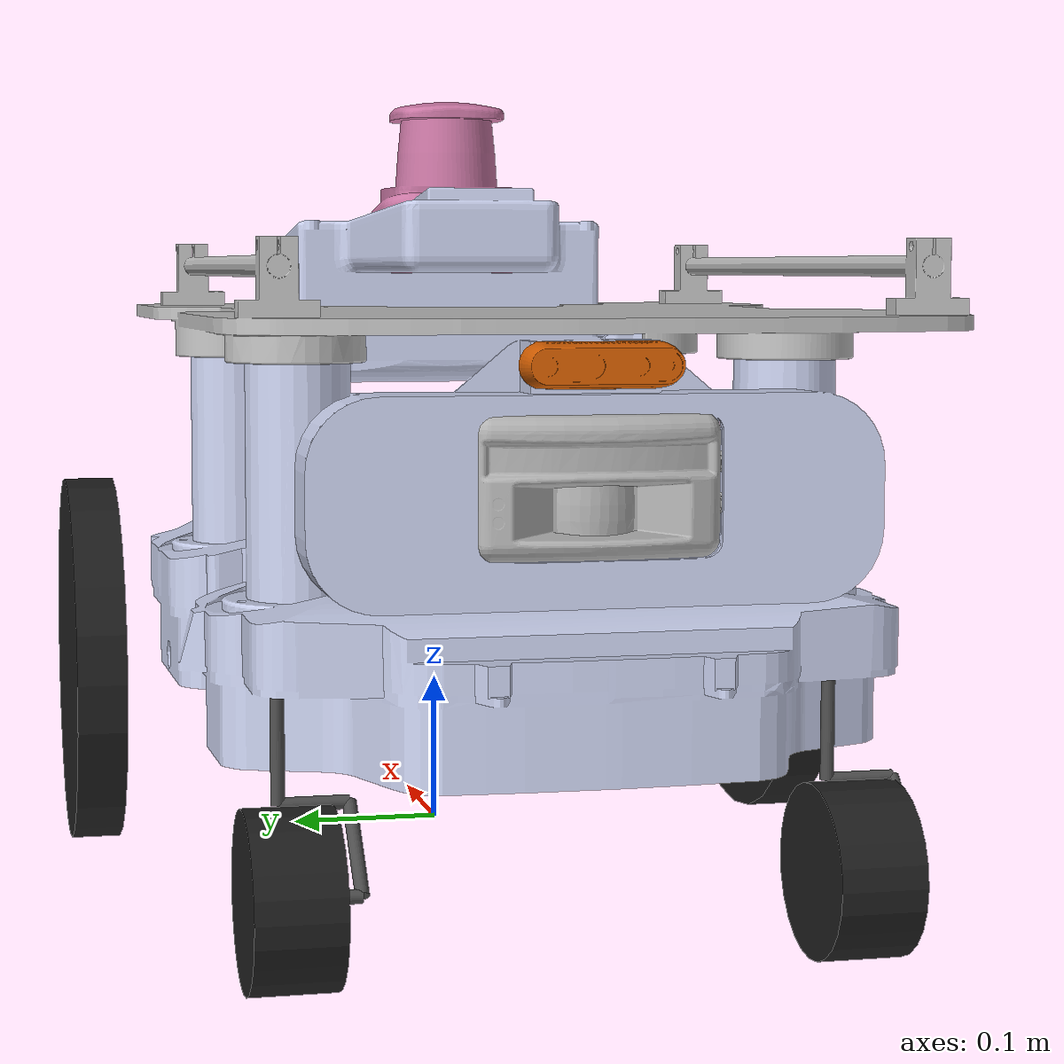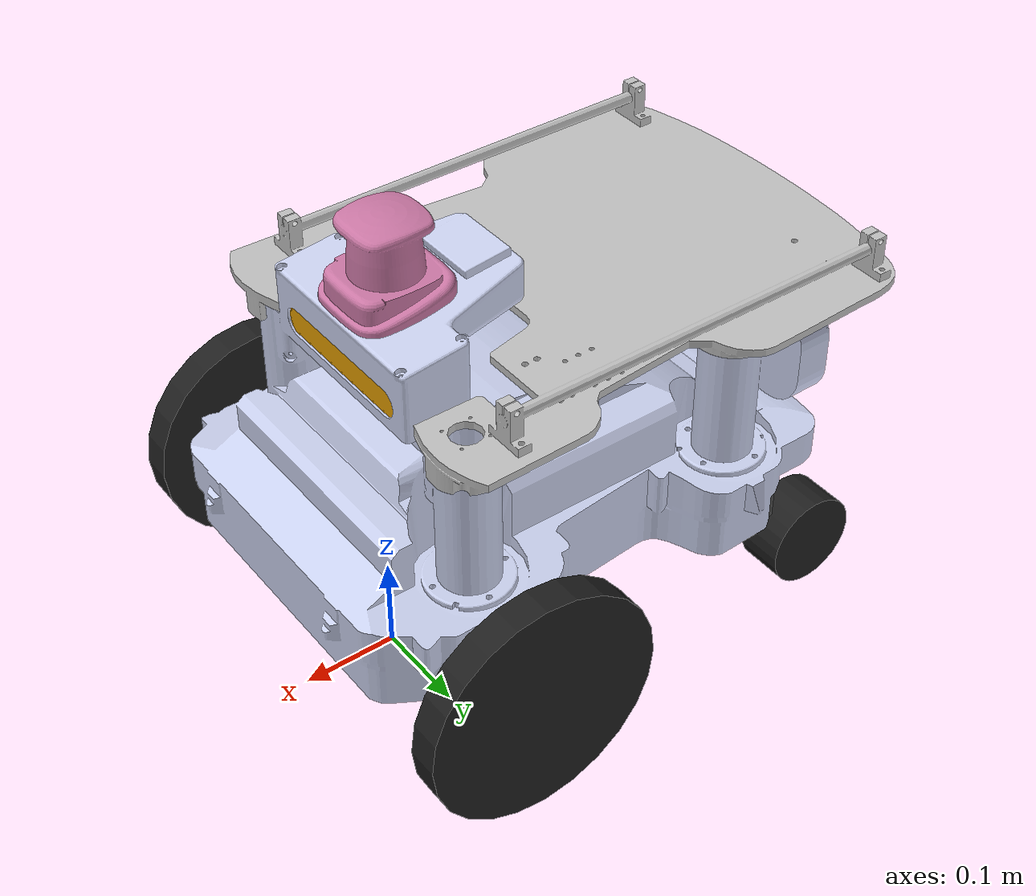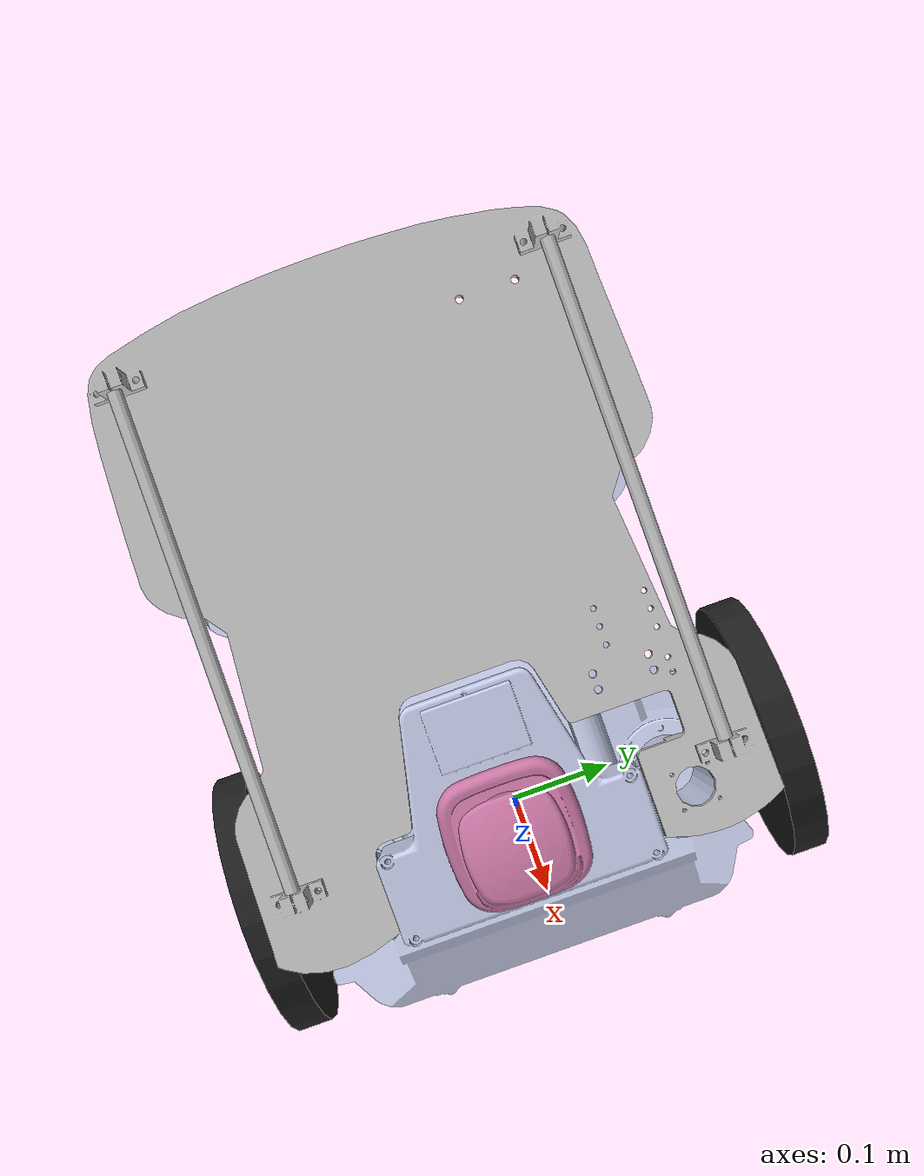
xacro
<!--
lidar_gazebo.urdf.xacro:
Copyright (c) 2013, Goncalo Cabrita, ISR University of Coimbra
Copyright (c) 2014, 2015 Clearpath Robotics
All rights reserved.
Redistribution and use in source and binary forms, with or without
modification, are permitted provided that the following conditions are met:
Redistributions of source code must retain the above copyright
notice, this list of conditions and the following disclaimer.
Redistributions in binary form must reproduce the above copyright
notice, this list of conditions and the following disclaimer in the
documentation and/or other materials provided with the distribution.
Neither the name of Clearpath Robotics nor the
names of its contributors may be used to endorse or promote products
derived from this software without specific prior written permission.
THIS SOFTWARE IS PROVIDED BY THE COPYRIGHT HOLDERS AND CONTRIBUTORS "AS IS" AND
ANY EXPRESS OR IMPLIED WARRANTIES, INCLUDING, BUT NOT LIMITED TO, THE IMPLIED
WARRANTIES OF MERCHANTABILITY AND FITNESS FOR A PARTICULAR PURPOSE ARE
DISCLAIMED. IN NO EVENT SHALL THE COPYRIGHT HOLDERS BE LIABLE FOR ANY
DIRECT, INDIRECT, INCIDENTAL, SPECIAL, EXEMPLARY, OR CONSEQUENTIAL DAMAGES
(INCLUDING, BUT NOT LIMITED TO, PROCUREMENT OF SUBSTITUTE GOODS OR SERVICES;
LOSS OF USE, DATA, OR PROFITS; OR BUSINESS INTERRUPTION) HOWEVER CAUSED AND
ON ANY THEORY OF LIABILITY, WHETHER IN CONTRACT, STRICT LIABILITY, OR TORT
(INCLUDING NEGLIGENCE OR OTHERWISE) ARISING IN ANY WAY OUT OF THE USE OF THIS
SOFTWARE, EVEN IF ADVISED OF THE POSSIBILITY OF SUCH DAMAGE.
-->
<?xml version="1.0" encoding="utf-8"?>

<robot name="unicorn" xmlns:xacro="http://www.ros.org/wiki/xacro">

  <xacro:arg name="robot_namespace" default="/" />
  <xacro:arg name="sim" default="false" />

    <!-- Swivel wheel -->
  <xacro:include filename="$(find unicorn_description)/urdf/swivel_wheel.urdf.xacro" />

    <!-- Wheel -->
  <xacro:include filename="$(find unicorn_description)/urdf/wheel.urdf.xacro" />

    <!-- camera pack-->
  <xacro:include filename="$(find unicorn_description)/urdf/stereo_camera_gazebo.urdf.xacro" />

   <!-- lidar pack-->
  <xacro:include filename="$(find unicorn_description)/urdf/lidar_gazebo.urdf.xacro" />

  <xacro:property name="M_PI" value="3.1415926535897931" />
  <xacro:property name="M_PI2" value="1.57079632679" />
  <!-- base -->

    <!-- Main Body-base -->
  <xacro:property name="base_x_size" value="0.72" />
  <xacro:property name="base_y_size" value="0.55" />
  <xacro:property name="base_z_size" value="0.23" />
  <xacro:property name="base_mass" value="15" /> <!-- in kg-->

    <!--Inertial macros for the box and cylinder. Units are kg*m^2-->
  <xacro:macro name="box_inertia" params="m x y z">
    <inertia ixx="${m*(y*y+z*z)/12}" ixy="0" ixz="0"
             iyy="${m*(x*x+z*z)/12}" iyz="0"
             izz="${m*(x*x+z*z)/12}" />
  </xacro:macro>

  <!-- Front Lidar -->
  <xacro:arg name="laser_xyz" default="-0.0214 -0.0049 0.465" />
  <xacro:arg name="laser_rpy" default="0 0 0" />
  <xacro:arg name="frontlidar_meshfile" default="package://unicorn_description/meshes/base_laser.STL" />

<!-- Rear Lidar  -->
  <xacro:arg name="rear_laser_xyz" default="-0.42145 -0.00645 0.28652" />
  <xacro:arg name="rear_laser_rpy" default="0 0 ${M_PI}" />
  <xacro:arg name="rearlidar_meshfile" default="package://unicorn_description/meshes/rear_lidar.STL" />

  <!-- Zed Camera -->
  <xacro:arg name="zed_xyz" default="0.03112 -0.00552 0.36395" />
  <xacro:arg name="zed_rpy" default="0 0 0" />
  <xacro:arg name="zed_meshfile" default="package://unicorn_description/meshes/zed_link.STL" />

  <!-- Real Sense -->
  <xacro:arg name="real_base" default="${-0.4065-0.025} ${-0.03882+0.015} 0.33658" />
  <xacro:arg name="real_rgb_xyz" default="0 0.015 0" />
  <xacro:arg name="real_depth_xyz" default="0 0 0" />

  <xacro:arg name="real_rpy" default="0 0 ${M_PI}" />
  <xacro:arg name="real_optical_rpy" default="${-M_PI2} 0 ${-M_PI2}" />
  <xacro:arg name="real_depth_rpy" default="${-M_PI2} 0 ${-M_PI2}" />
  <xacro:arg name="realsense_meshfile" default="package://unicorn_description/meshes/real_sense.STL" />

 <!-- Main Body-base -->
  <link
    name="chassis_link">
    <inertial>
      <origin
        xyz="0 0 0"
        rpy="0 0 0" />
      <mass
        value="15" />
      <inertia
        ixx="1"
        ixy="0"
        ixz="3"
        iyy="3"
        iyz="3"
        izz="1" />
    </inertial>
    <visual>
      <origin
        xyz="0 0 0"
        rpy="0 0 0" />
      <geometry>
        <mesh
          filename="package://unicorn_description/meshes/chassis_link.STL" />
      </geometry>
      <material
        name="">
        <color
          rgba="0.792156862745098 0.819607843137255 0.933333333333333 1" />
      </material>
    </visual>
    <collision>
      <origin
        xyz="0 0 0"
        rpy="0 0 0" />
      <geometry>
        <mesh
          filename="package://unicorn_description/meshes/chassis_link.STL" />
        <surface>
         <friction>
           <ode><mu>0.4</mu><mu2>0.4</mu2></ode>
         </friction>
      </surface>
      </geometry>
    </collision>
  </link>

<!-- Lift -->
  <link
    name="lift_link">
    <inertial>
      <origin
        xyz="0 0 0"
        rpy="0 0 0" />
      <mass
        value="4" />
      <inertia
        ixx="1"
        ixy="0"
        ixz="3"
        iyy="3"
        iyz="3"
        izz="1" />
    </inertial>
    <visual>
      <origin
        xyz="0 0 0"
        rpy="0 0 ${M_PI}" />
      <geometry>
        <mesh
          filename="package://unicorn_description/meshes/lift_link.STL" />
      </geometry>
      <material
        name="">
        <color
          rgba="0.752941176470588 0.752941176470588 0.752941176470588 1" />
      </material>
    </visual>
    <collision>
      <origin
        xyz="0 0 0"
        rpy="0 0 ${M_PI}" />
      <geometry>
        <mesh
          filename="package://unicorn_description/meshes/lift_link.STL" />
      </geometry>
    </collision>
  </link>
  <joint
    name="lift_joint"
    type="fixed">
    <origin
      xyz="0 0 0"
      rpy="0 0 ${M_PI}" />
    <parent
      link="chassis_link" />
    <child
      link="lift_link" />
    <axis
      xyz="0 0 0" />
    <joint_properties damping="1" friction="0.5" />
  </joint>

  <wheel fb="back" lr="left" parent="lift_link"  translateY="0.24" translateX="0" translateZ="0.1225" wheel_radius="0.1225" wheel_height="0.032" flip="1"/>
  <wheel fb="back" lr="right" parent="lift_link" translateY="-0.24" translateX="0 " translateZ="0.1225" wheel_radius="0.1225" wheel_height="0.032" flip="1"/>

  <!-- others wheels -->
  <swivel_wheel fb="front" lr="left" parent="chassis_link" translateY="0.16" translateX="-0.355" translateZ="0.1531" wheel_radius="0.05" wheel_height="0.05" flip="0"/>
  <swivel_wheel fb="front" lr="right" parent="chassis_link" translateY="-0.16" translateX="-0.355" translateZ="0.1531" wheel_radius="0.05" wheel_height="0.05" flip="0"/>

 <!-- Front Lidar -->
  <lidar_gazebo frame="base_laser" topic="frontLidar/scan" simulation="$(arg sim)" sample_size="800" min_angle="-2.35619" max_angle="2.35619" robot_namespace="$(arg robot_namespace)" filename="$(arg frontlidar_meshfile)" />

  <joint name="laser_mount_joint" type="fixed">
    <origin xyz="$(arg laser_xyz)" rpy="$(arg laser_rpy)" />
    <parent link="chassis_link" />
    <child link="base_laser" />
    <joint_properties damping="1" friction="0.5" />
  </joint>

   <!-- Back Lidar -->
  <lidar_gazebo frame="rear_laser" topic="rearLidar/scan" simulation="$(arg sim)" sample_size="11" min_angle="-0.767944871" max_angle="0.767944871" robot_namespace="$(arg robot_namespace)" filename="$(arg rearlidar_meshfile)"/>

  <joint name="rear_laser_mount_joint" type="fixed">
    <origin xyz="$(arg rear_laser_xyz)" rpy="$(arg rear_laser_rpy)" />
    <parent link="chassis_link" />
    <child link="rear_laser" />
    <joint_properties damping="1" friction="0.5" />
  </joint>

  <!-- Zed Camera -->
<!-- Camera Center -->
    <joint name="zed_camera_center_joint" type="fixed">
        <parent link="chassis_link"/>
        <child link="zed_camera_center"/>
        <origin xyz="$(arg zed_xyz)" rpy="0 0 0" />
    </joint>

    <link name="zed_camera_center">
        <visual>
            <origin xyz="0 0 0" rpy="0 0 0"/>
            <geometry>
                <mesh filename="$(arg zed_meshfile)" />
            </geometry>
        </visual>
    </link>

<!-- Left Camera -->
    <joint name="zed_left_camera_joint" type="fixed">
        <parent link="zed_camera_center"/>
        <child link="zed_left_camera_frame"/>
        <origin xyz="0 0.06 0" rpy="0 0 0" />
    </joint>

    <link name="zed_left_camera_frame" />

    <joint name="zed_left_camera_optical_joint" type="fixed">
        <origin xyz="0 0 0" rpy="-${M_PI/2} 0.0 -${M_PI/2}"/>
        <parent link="zed_left_camera_frame"/>
        <child link="zed_left_camera_optical_frame"/>
    </joint>

    <link name="zed_left_camera_optical_frame"/>

<!-- Right Camera -->
    <joint name="zed_right_camera_joint" type="fixed">
        <parent link="zed_camera_center"/>
        <child link="zed_right_camera_frame"/>
        <origin xyz="0 -0.06 0" rpy="0 0 0" />
    </joint>

    <link name="zed_right_camera_frame" />

    <joint name="zed_right_camera_optical_joint" type="fixed">
        <origin xyz="0 0 0" rpy="-${M_PI/2} 0.0 -${M_PI/2}"/>
        <parent link="zed_right_camera_frame"/>
        <child link="zed_right_camera_optical_frame"/>
    </joint>

    <link name="zed_right_camera_optical_frame"/>
<xacro:if value="$(arg sim)">
    <stereo_camera frame_rgb="zed_camera_center" frame_depth="zed_depth_dummy_frame_sim_only" cameraName="zed"  topic="pointcloud" robot_namespace="$(arg robot_namespace)"/>

    <link name="zed_depth_dummy_frame_sim_only"></link>
    <joint name="zed_camera_depth_joint" type="fixed">
      <origin xyz="0 0 0" rpy="${-pi/2} 0 ${-pi/2}"/>
      <parent link="zed_camera_center"/>
      <child link="zed_depth_dummy_frame_sim_only"/>
    </joint>
</xacro:if>

  <!-- realsense Camera -->
<!-- Links only needed in simulation, created by realsense software otherwise-->

  <link
    name="realsense_link">
      <visual>
      <origin xyz="0 0 0" rpy="0 0 0"/>
      <geometry>
          <mesh filename="$(arg realsense_meshfile)" />
      </geometry>
    </visual>
  </link>

  <joint name="realsense_joint" type="fixed">
    <origin xyz="$(arg real_base)" rpy="$(arg real_rpy)"/>
    <parent link="chassis_link"/>
    <child link="realsense_link"/>
  </joint>

<xacro:if value="$(arg sim)">
  <stereo_camera frame_rgb="realsense_color_frame" frame_depth="realsense_depth_dummy_frame_sim_only" cameraName="realsense" topic="pointcloud" robot_namespace="$(arg robot_namespace)"/>

  <link name="realsense_color_frame"> </link>

  <link name="realsense_depth_frame"></link>

   <link name="realsense_depth_dummy_frame_sim_only"></link>

  <link
    name="realsense_depth_optical_frame">
  </link>

  <link
    name="realsense_color_optical_frame">
  </link>

  <joint name="realsense_gb_joint" type="fixed">
    <origin xyz="$(arg real_rgb_xyz)" rpy="0 0 0"/>
    <parent link="realsense_link"/>
    <child link="realsense_color_frame"/>
  </joint>

  <joint name="realsense_depth_joint" type="fixed">
    <origin xyz="$(arg real_depth_xyz)" rpy="0 0 0"/>
    <parent link="realsense_link"/>
    <child link="realsense_depth_frame"/>
  </joint>

  <joint name="realsense_depth_dummy_joint" type="fixed">
    <origin xyz="$(arg real_depth_xyz)" rpy="-${M_PI/2} 0.0 -${M_PI/2}"/>
    <parent link="realsense_link"/>
    <child link="realsense_depth_dummy_frame_sim_only"/>
  </joint>

  <joint name="realsense_optical_color_joint" type="fixed">
    <origin xyz="0 0 0" rpy="$(arg real_optical_rpy)"/>
    <parent link="realsense_color_frame"/>
    <child link="realsense_color_optical_frame"/>
  </joint>

  <joint name="realsense_optical_depth_joint" type="fixed">
    <origin xyz="0 0 0" rpy="$(arg real_depth_rpy)"/>
    <parent link="realsense_depth_frame"/>
    <child link="realsense_depth_optical_frame"/>
  </joint>
</xacro:if>

<xacro:if value="$(arg sim)">
  <!-- GPS -->
  <gazebo>
    <plugin name="novatel_gps_sim" filename="libhector_gazebo_ros_gps.so">
      <alwaysOn>true</alwaysOn>
      <updateRate>5</updateRate>
      <frameId>odom_chassis</frameId>
      <bodyName>chassis_link</bodyName>
      <topicName>gps</topicName>
      <velocityTopicName>gps_velocity</velocityTopicName>
      <drift>5.0 5.0 5.0</drift>
      <gaussianNoise>0.1 0.1 0.1</gaussianNoise>
      <velocityDrift>0 0 0</velocityDrift>
      <velocityGaussianNoise>0.1 0.1 0.1</velocityGaussianNoise>
    </plugin>
  </gazebo>
</xacro:if>

<xacro:if value="$(arg sim)">
  <!-- GAZEBO STUFF -->
  <gazebo>
    <plugin name="automower_gazebo_controller" filename="libam_gazebo_controller_2wd.so">
      <alwaysOn>true</alwaysOn>
      <updateRate>50.0</updateRate>
      <leftJoint>back_right_wheel_joint</leftJoint>
      <rightJoint>back_left_wheel_joint</rightJoint>
      <wheelSeparation>0.4645</wheelSeparation>
      <wheelDiameter>0.245</wheelDiameter>
      <wheelTorque>100</wheelTorque>
      <commandTopic>cmd_vel</commandTopic>
      <odometryTopic>wheel_encoder/odom</odometryTopic>
      <odometryFrame>odom_chassis</odometryFrame>
      <robotBaseFrame>chassis_link</robotBaseFrame>
      <publishWheelTF>false</publishWheelTF>
      <publishOdomTF>false</publishOdomTF>
      <publishWheelJointState>false</publishWheelJointState>

      <gaussianNoise>0.1</gaussianNoise>
      <accelDrift>0.5 0.5 0.5</accelDrift>
      <accelGaussianNoise>0.35 0.35 0.3</accelGaussianNoise>
      <rateDrift>0.1 0.1 0.1</rateDrift>
      <rateGaussianNoise>0.05 0.05 0.015</rateGaussianNoise>
      <headingDrift>0.1</headingDrift>
      <headingGaussianNoise>1.00</headingGaussianNoise>
    </plugin>

    <plugin name="gazebo_ros_control" filename="libgazebo_ros_control.so" />

    <plugin name="imu_plugin" filename="libhector_gazebo_ros_imu.so">
      <alwaysOn>true</alwaysOn>
      <bodyName>zed_camera</bodyName>
      <topicName>zed/imu</topicName>
      <serviceName>imu_service</serviceName>
      <updateRate>100.0</updateRate>
      <rpyOffsets>0 0 0</rpyOffsets>
        <gaussianNoise>0.1</gaussianNoise>
        <accelDrift>0.1 0.1 0.1</accelDrift>
        <accelGaussianNoise>0.35 0.35 0.3</accelGaussianNoise>
        <rateDrift>0.1 0.1 0.1</rateDrift>
        <rateGaussianNoise>0.05 0.05 0.015</rateGaussianNoise>
        <headingDrift>0.1</headingDrift>
        <headingGaussianNoise>1.00</headingGaussianNoise>
    </plugin>

    <plugin name="am_gazebo_wheelencoder" filename="libam_gazebo_wheelencoder.so">
  </plugin>

  </gazebo>
</xacro:if>

</robot>

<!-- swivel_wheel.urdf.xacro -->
<robot name="swivel_wheel" xmlns:xacro="http://www.ros.org/wiki/xacro">

  <!-- Wheels -->
  <xacro:property name="wheel_mass" value="0.5" /> <!-- in kg-->

  <xacro:macro name="cylinder_inertia" params="m r h">
    <inertia ixx="${m*(3*r*r+h*h)/12}" ixy="0" ixz="0"
             iyy="${m*(3*r*r+h*h)/12}" iyz="0"
             izz="${m*r*r/2}" />
  </xacro:macro>

  <xacro:macro name="swivel_arm" params="lr index l offset">
    <link name="sw_arm_${lr}_${index}">

      <inertial>
        <mass value="0.01" />
        <origin xyz="0 0 0" />
        <cylinder_inertia m="0.01" r="0.004" h="${l}" />
      </inertial>

      <visual>
        <geometry>
          <cylinder radius="0.004" length="${l}" />
        </geometry>
        <material name="silver">
          <color rgba="0.3 0.3 0.3 1" />
        </material>
        <origin rpy="0 0 0" xyz="${offset}" />
      </visual>
    </link>
  </xacro:macro>

  <xacro:macro name="swivel_wheel"
               params="fb lr parent translateX translateY translateZ wheel_radius wheel_height flip"> <!--fb : front, back ; lr: left, right -->

    <!-- First link connected to parent-->
    <swivel_arm lr="${lr}" index="1" l="0.06" offset="0 0 -0.03" />

    <joint name="sw_arm_${lr}_connect_1" type="continuous">
      <origin xyz="${translateX} ${translateY} ${translateZ}" rpy="0 0 0" />
      <axis xyz="0 0 1" rpy="0 0 0" />
      <parent link="${parent}" />
      <child link="sw_arm_${lr}_1" />
      <limit effort="100" velocity="100" />
      <joint_properties damping="0.1" friction="0.1" />
    </joint>

    <!-- Second link connected to first-->
    <swivel_arm lr="${lr}" index="2" l="0.04" offset="0 0 0.02" />

    <joint name="sw_arm_${lr}_connect_2" type="fixed">
      <origin rpy="1.5707 0 0" xyz="0 0 -0.06" />
      <parent link="sw_arm_${lr}_1" />
      <child link="sw_arm_${lr}_2" />
    </joint>

    <!-- Third link connected to second-->
    <swivel_arm lr="${lr}" index="3" l="0.06" offset="0 0 -0.03" />

    <joint name="sw_arm_${lr}_connect_3" type="fixed">
      <origin rpy="-1.5707 0 -0.78" xyz="0 0 0.04" />
      <parent link="sw_arm_${lr}_2" />
      <child link="sw_arm_${lr}_3" />
    </joint>

    <!-- Fourth link connected to third-->
    <swivel_arm lr="${lr}" index="4" l="0.04" offset="0 0 -0.02" />

    <joint name="sw_arm_${lr}_connect_4" type="fixed">
      <origin rpy="1.5707 0 0" xyz="0 0 -0.060" />
      <parent link="sw_arm_${lr}_3" />
      <child link="sw_arm_${lr}_4" />
    </joint>

    <!-- Wheel connected to fourth-->
    <link name="${fb}_${lr}_swivel_wheel">
      <visual>
        <origin xyz="0 0 0" rpy="${flip*M_PI/2} 0 0" />
        <geometry>
          <cylinder length="${wheel_height}" radius="${wheel_radius}" />
        </geometry>
        <material name="Black" />
      </visual>
      <collision>
        <origin xyz="0 0 0" rpy="0 0 0" />
        <geometry>
          <cylinder length="${wheel_height}" radius="${wheel_radius}" />
        </geometry>
        <surface>
          <friction>
            <ode>
              <mu>0.8</mu>
              <mu2>0.8</mu2>
            </ode>
          </friction>
        </surface>
      </collision>
      <inertial>
        <mass value="${wheel_mass}" />
        <origin xyz="0 0 0" />
        <cylinder_inertia m="${wheel_mass}" r="${wheel_radius}" h="${wheel_height}" />
      </inertial>
    </link>

    <gazebo reference="${fb}_${lr}_swivel_wheel">
      <mu1 value="100" />
      <mu2 value="100" />
      <kp value="10e2" />
      <kd value="10e2" />
      <dampingFactor value="0.9" />
      <fdir1 value="1 1 1" />
      <material>Gazebo/Black</material>
      <turnGravityOff>false</turnGravityOff>
    </gazebo>

    <joint name="${fb}_${lr}_swivel_wheel_joint" type="continuous">
      <parent link="sw_arm_${lr}_4" />
      <child link="${fb}_${lr}_swivel_wheel" />
      <origin rpy="0 0 0" xyz="0 0 -0.04" />
      <axis xyz="0 0 1" rpy="0 0 0" />
      <limit effort="100" velocity="100" />
      <joint_properties damping="1" friction="1" />
    </joint>

    <!-- Transmission is important to link the joints and the controller -->

  </xacro:macro>
</robot>

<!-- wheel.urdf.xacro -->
<robot name="wheel" xmlns:xacro="http://www.ros.org/wiki/xacro">

  <!-- Wheels -->
  <xacro:property name="wheel_mass" value="0.3" /> <!-- in kg-->

  <xacro:macro name="cylinder_inertia" params="m r h">
    <inertia ixx="${m*(3*r*r+h*h)/12}" ixy="0" ixz="0"
             iyy="${m*(3*r*r+h*h)/12}" iyz="0"
             izz="${m*r*r/2}" />
  </xacro:macro>

  <xacro:macro name="wheel"
               params="fb lr parent translateX translateY translateZ wheel_radius wheel_height flip"> <!--fb : front, back ; lr: left, right -->
    <link name="${fb}_${lr}_wheel">
      <visual>
        <origin xyz="0 0 0" rpy="${flip*M_PI/2} 0 0" />
        <geometry>
          <cylinder length="${wheel_height}" radius="${wheel_radius}" />
        </geometry>
        <material name="Black" />
      </visual>
      <surface>
        <friction>
          <ode>
            <mu>0.8</mu>
            <mu2>0.8</mu2>
          </ode>
        </friction>
      </surface>
      <collision>
        <origin xyz="0 0 0" rpy="${flip*M_PI/2} 0 0" />
        <geometry>
          <cylinder length="${wheel_height}" radius="${wheel_radius}" />
        </geometry>
      </collision>
      <inertial>
        <mass value="${wheel_mass}" />
        <origin xyz="0 0 0" />
        <cylinder_inertia m="${wheel_mass}" r="${wheel_radius}" h="${wheel_height}" />
      </inertial>
    </link>

    <gazebo reference="${fb}_${lr}_wheel">
      <mu1 value="10000.0" />
      <mu2 value="10000.0" />
      <kp value="10e4" />
      <kd value="10e2" />
      <dampingFactor value="0.9" />
      <fdir1 value="1 0 0" />
      <material>Gazebo/Black</material>
      <turnGravityOff>false</turnGravityOff>
    </gazebo>

    <joint name="${fb}_${lr}_wheel_joint" type="continuous">
      <parent link="${parent}" />
      <child link="${fb}_${lr}_wheel" />
      <origin xyz="${translateX} ${translateY} ${translateZ}" rpy="0 0 0" />
      <axis xyz="0 1 0" rpy="0 0 0" />
      <limit effort="1000" velocity="100" />
      <joint_properties damping="0.5" friction="0.1" />
    </joint>

    <!-- Transmission is important to link the joints and the controller -->
    <transmission name="${fb}_${lr}_wheel_joint_trans">
      <type>transmission_interface/SimpleTransmission</type>
      <joint name="${fb}_${lr}_wheel_joint">
        <hardwareInterface>hardware_interface/EffortJointInterface</hardwareInterface>
      </joint>
      <actuator name="${fb}_${lr}_wheel_joint_motor">
        <hardwareInterface>hardware_interface/EffortJointInterface</hardwareInterface>
        <mechanicalReduction>1</mechanicalReduction>
      </actuator>
    </transmission>

  </xacro:macro>
</robot>

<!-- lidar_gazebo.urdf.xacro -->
<robot xmlns:xacro="http://www.ros.org/wiki/xacro">

  <xacro:macro name="lidar_gazebo" params="frame:=laser topic:=scan simulation:=true sample_size:=800 update_rate:=50
               min_angle:=-2.35619 max_angle:=2.35619 min_range:=0.1 max_range:=30.0 filename robot_namespace:=/" >

    <xacro:arg name="sim" default="${simulation}" />

    <link name="${frame}">

      <visual>
        <origin xyz="0 0 0" rpy="0 0 0" />
        <geometry>
          <!-- Origin of this mesh is the focal point of the LIDAR. 1.57079632679-->
          <mesh filename="${filename}" />
        </geometry>
      </visual>

    </link>

    <xacro:if value="$(arg sim)">
      <gazebo reference="${frame}">
        <turnGravityOff>true</turnGravityOff>
        <sensor type="ray" name="${frame}">
          <pose>0 0 0 0 0 0</pose>
          <visualize>false</visualize>
          <update_rate>${update_rate}</update_rate>
          <ray>
            <scan>
              <horizontal>
                <samples>${sample_size}</samples>
                <resolution>1</resolution>
                <min_angle>${min_angle}</min_angle>
                <max_angle>${max_angle}</max_angle>
              </horizontal>
            </scan>
            <range>
              <min>${min_range}</min>
              <max>${max_range}</max>
              <resolution>0.01</resolution>
            </range>
            <noise>
              <type>gaussian</type>
              <mean>0.0</mean>
              <stddev>0.001</stddev>
            </noise>
          </ray>
          <plugin name="gazebo_ros_laser" filename="libgazebo_ros_laser.so">
            <topicName>${topic}</topicName>
            <frameName>${frame}</frameName>
            <robotNamespace>${robot_namespace}</robotNamespace>
          </plugin>
        </sensor>
      </gazebo>
    </xacro:if>
  </xacro:macro>
</robot>
